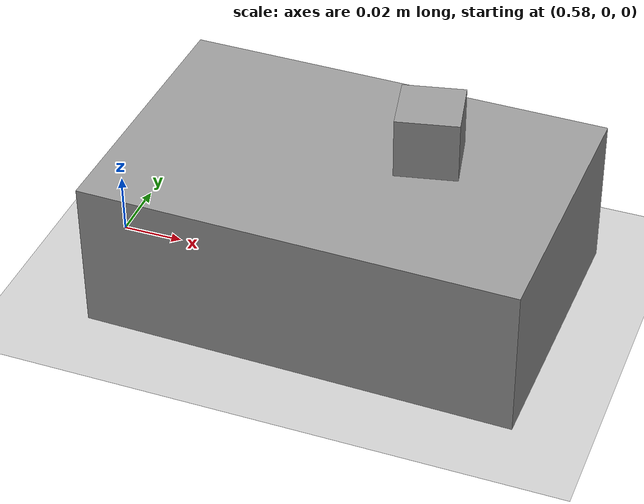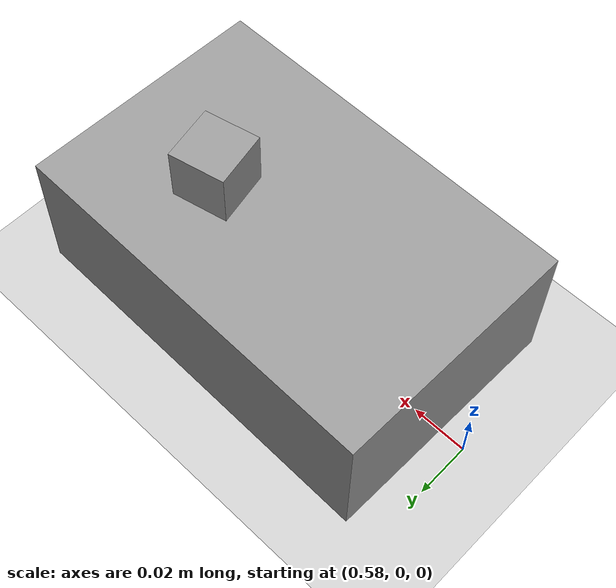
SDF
<sdf version="1.7">
 <world name="default">
  <light name="sun" type="directional">
   <pose>0 0 10 0 -0 0</pose>
   <diffuse>0.8 0.8 0.8 1</diffuse>
   <specular>0.2 0.2 0.2 1</specular>
   <attenuation>
    <range>1000</range>
    <constant>0.9</constant>
    <linear>0.01</linear>
    <quadratic>0.001</quadratic>
   </attenuation>
   <direction>-0.5 0.1 -0.9</direction>
   <spot><inner_angle>0</inner_angle><outer_angle>0</outer_angle><falloff>0</falloff></spot>
  </light>
  <model name="ground_plane">
   <static>1</static>
   <link name="link">
    <collision name="collision">
     <geometry><plane><normal>0 0 1</normal><size>100 100</size></plane></geometry>
     <surface>
      <contact><collide_bitmask>65535</collide_bitmask></contact>
      <friction><ode><mu>100</mu><mu2>50</mu2></ode></friction>
     </surface>
    </collision>
    <visual name="visual">
     <cast_shadows>0</cast_shadows>
     <geometry><plane><normal>0 0 1</normal><size>100 100</size></plane></geometry>
     <material>
      <script><uri>file://media/materials/scripts/gazebo.material</uri><name>Gazebo/Grey</name></script>
     </material>
    </visual>
   </link>
  </model>
  <gravity>0 0 -9.8</gravity>
  <magnetic_field>6e-06 2.3e-05 -4.2e-05</magnetic_field>
  <atmosphere type="adiabatic"/>
  <physics type="ode">
   <max_step_size>0.001</max_step_size>
   <real_time_factor>1</real_time_factor>
   <real_time_update_rate>1000</real_time_update_rate>
  </physics>
  <scene><ambient>0.4 0.4 0.4 1</ambient><background>0.7 0.7 0.7 1</background><shadows>1</shadows></scene>
  <spherical_coordinates>
   <surface_model>EARTH_WGS84</surface_model>
   <latitude_deg>0</latitude_deg>
   <longitude_deg>0</longitude_deg>
   <elevation>0</elevation>
   <heading_deg>0</heading_deg>
  </spherical_coordinates>
  <model name="realsense_box">
   <link name="link">
    <inertial>
     <mass>0.1</mass>
     <inertia>
      <ixx>8.833e-05</ixx>
      <ixy>0</ixy>
      <ixz>0</ixz>
      <iyy>0.00018417</iyy>
      <iyz>0</iyz>
      <izz>0.00023083</izz>
     </inertia>
    </inertial>
    <pose>0.13 0 0.025 0 -0 0</pose>
    <visual name="visual">
     <geometry><box><size>0.14 0.09 0.05</size></box></geometry>
     <material>
      <script><name>Gazebo/Grey</name><uri>file://media/materials/scripts/gazebo.material</uri></script>
      <shader type="pixel"><normal_map>__default__</normal_map></shader>
      <ambient>0.3 0.3 0.3 1</ambient>
      <diffuse>0.7 0.7 0.7 1</diffuse>
      <specular>0.01 0.01 0.01 1</specular>
      <emissive>0 0 0 1</emissive>
     </material>
    </visual>
    <collision name="collision">
     <geometry><box><size>0.14 0.09 0.05</size></box></geometry>
     <surface>
      <friction>
       <ode><mu>1</mu><mu2>1</mu2><fdir1>0 0 0</fdir1><slip1>0</slip1><slip2>0</slip2></ode>
       <torsional>
        <coefficient>1</coefficient>
        <patch_radius>0</patch_radius>
        <surface_radius>0</surface_radius>
        <use_patch_radius>1</use_patch_radius>
        <ode><slip>0</slip></ode>
       </torsional>
      </friction>
      <bounce><restitution_coefficient>0</restitution_coefficient><threshold>1e+06</threshold></bounce>
      <contact>
       <collide_without_contact>0</collide_without_contact>
       <collide_without_contact_bitmask>1</collide_without_contact_bitmask>
       <collide_bitmask>1</collide_bitmask>
       <ode>
        <soft_cfm>0</soft_cfm>
        <soft_erp>0.2</soft_erp>
        <kp>1e+13</kp>
        <kd>1</kd>
        <max_vel>0.01</max_vel>
        <min_depth>0</min_depth>
       </ode>
       <bullet>
        <split_impulse>1</split_impulse>
        <split_impulse_penetration_threshold>-0.01</split_impulse_penetration_threshold>
        <soft_cfm>0</soft_cfm>
        <soft_erp>0.2</soft_erp>
        <kp>1e+13</kp>
        <kd>1</kd>
       </bullet>
      </contact>
     </surface>
    </collision>
   </link>
   <static>0</static>
   <pose>0.529619 -0.0003 -6e-06 5.6e-05 6e-06 -0.017449</pose>
  </model>
  <model name="pickup">
   <link name="link">
    <inertial>
     <mass>0.003</mass>
     <inertia><ixx>2e-07</ixx><ixy>0</ixy><ixz>0</ixz><iyy>2e-07</iyy><iyz>0</iyz><izz>2e-07</izz></inertia>
    </inertial>
    <pose>0.14 0 0.06 0 -0 0</pose>
    <visual name="visual">
     <geometry><box><size>0.02 0.02 0.02</size></box></geometry>
     <material>
      <script><name>Gazebo/Grey</name><uri>file://media/materials/scripts/gazebo.material</uri></script>
      <shader type="pixel"><normal_map>__default__</normal_map></shader>
      <ambient>0.3 0.3 0.3 1</ambient>
      <diffuse>0.7 0.7 0.7 1</diffuse>
      <specular>0.01 0.01 0.01 1</specular>
      <emissive>0 0 0 1</emissive>
     </material>
    </visual>
    <collision name="collision">
     <geometry><box><size>0.02 0.02 0.02</size></box></geometry>
     <surface>
      <friction>
       <ode><mu>100</mu><mu2>100</mu2><fdir1>0 0 0</fdir1><slip1>0</slip1><slip2>0</slip2></ode>
       <torsional>
        <coefficient>1</coefficient>
        <patch_radius>0</patch_radius>
        <surface_radius>0</surface_radius>
        <use_patch_radius>1</use_patch_radius>
        <ode><slip>0</slip></ode>
       </torsional>
      </friction>
      <bounce><restitution_coefficient>0</restitution_coefficient><threshold>1e+06</threshold></bounce>
      <contact>
       <collide_without_contact>0</collide_without_contact>
       <collide_without_contact_bitmask>1</collide_without_contact_bitmask>
       <collide_bitmask>1</collide_bitmask>
       <ode>
        <soft_cfm>0</soft_cfm>
        <soft_erp>0.2</soft_erp>
        <kp>1e+13</kp>
        <kd>1</kd>
        <max_vel>0.01</max_vel>
        <min_depth>0</min_depth>
       </ode>
       <bullet>
        <split_impulse>1</split_impulse>
        <split_impulse_penetration_threshold>-0.01</split_impulse_penetration_threshold>
        <soft_cfm>0</soft_cfm>
        <soft_erp>0.2</soft_erp>
        <kp>1e+13</kp>
        <kd>1</kd>
       </bullet>
      </contact>
     </surface>
    </collision>
   </link>
   <static>0</static>
   <pose>0.546478 -0.02377 -6e-06 -8.1e-05 -4e-06 0.213896</pose>
  </model>
 </world>
</sdf>
